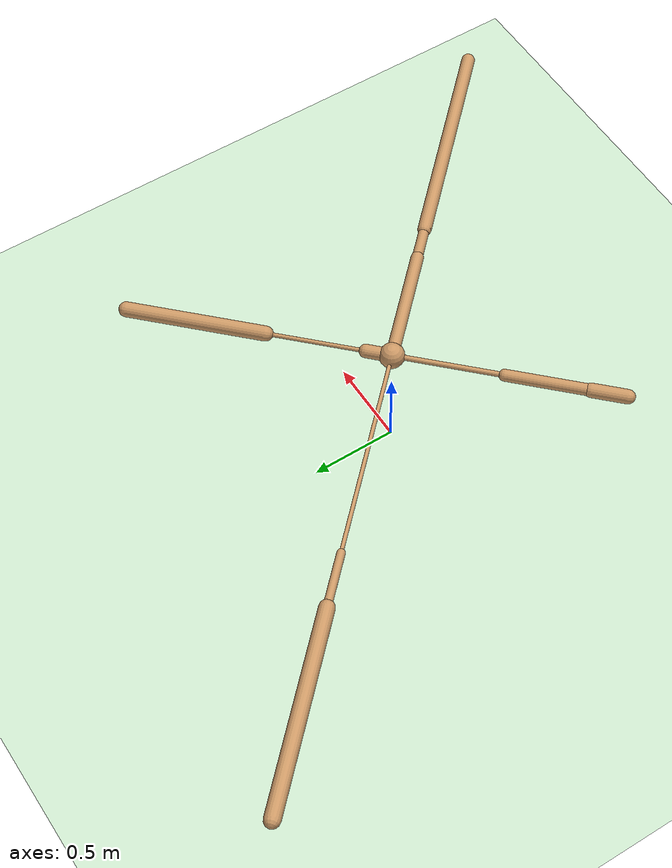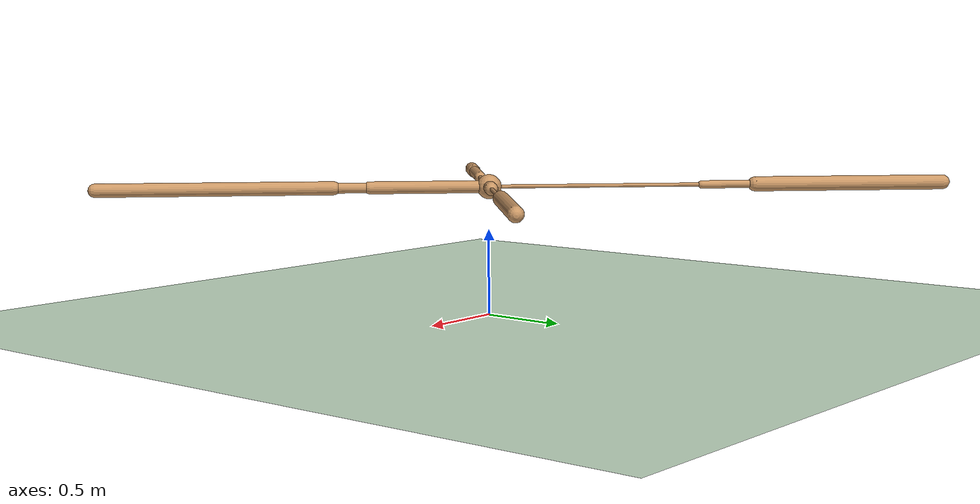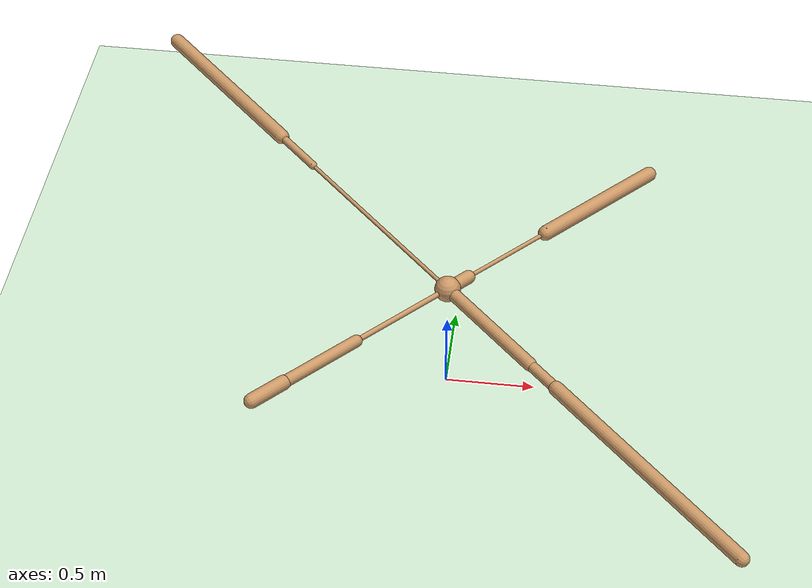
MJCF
<mujoco model="ant">
  <compiler angle="degree" coordinate="local" inertiafromgeom="true" />
  <option integrator="RK4" timestep="0.01" />
  <custom>
    <numeric data="0.0 0.0 0.55 1.0 0.0 0.0 0.0 0.0 1.0 0.0 -1.0 0.0 -1.0 0.0 1.0" name="init_qpos" />
  </custom>
  <default>
    <joint armature="1" damping="1" limited="true" />
    <geom conaffinity="0" condim="3" density="5.0" friction="1 0.5 0.5" margin="0.01" rgba="0.8 0.6 0.4 1" />
  </default>
  <asset>
    <texture builtin="gradient" height="100" rgb1="1 1 1" rgb2="0 0 0" type="skybox" width="100" />
    <texture builtin="flat" height="1278" mark="cross" markrgb="1 1 1" name="texgeom" random="0.01" rgb1="0.8 0.6 0.4" rgb2="0.8 0.6 0.4" type="cube" width="127" />
    <texture builtin="checker" height="100" name="texplane" rgb1="0 0 0" rgb2="0.8 0.8 0.8" type="2d" width="100" />
    <material name="MatPlane" reflectance="0.5" shininess="1" specular="1" texrepeat="60 60" texture="texplane" />
    <material name="geom" texture="texgeom" texuniform="true" />
  </asset>
  <worldbody>
    <light cutoff="100" diffuse="1 1 1" dir="-0 0 -1.3" directional="true" exponent="1" pos="0 0 1.3" specular=".1 .1 .1" />
    <geom conaffinity="1" condim="3" material="MatPlane" name="floor" pos="0 0 0" rgba="0.8 0.9 0.8 1" size="40 40 40" type="plane" />
    <body name="torso" pos="0 0 0.75">
      <camera name="track" mode="trackcom" pos="0 -11 5" xyaxes="1 0 0 0 0.5 1" />
      <geom name="torso_geom" pos="0 0 0" size="0.07152463495731354" type="sphere" />
      <joint armature="0" damping="0" limited="false" margin="0.01" name="root" pos="0 0 0" type="free" />
      <body name="front_left_leg" pos="0 0 0">
        <geom fromto="0 0 0 0.10183091461658478 0.10183091461658478 0" name="aux_1_geom" size="0.03813844546675682" type="capsule" />
        <body name="aux_1" pos="0.10183091461658478 0.10183091461658478 0">
          <joint axis="0 0 1" name="hip_1" pos="0.0 0.0 0.0" range="-30 30" type="hinge" />
          <geom fromto="0 0 0 0.39294493198394775 0.39294493198394775 0" name="left_leg_geom" size="0.011669793166220188" type="capsule" />
          <body name="left_leg_geom_aux" pos="0.39294493198394775 0.39294493198394775 0">
            <joint axis="-1 1 0" name="ankle_1" pos="0.0 0.0 0.0" range="30 70" type="hinge" />
            <geom fromto="0 0 0 0.5542117357254028 0.5542117357254028 0" name="left_ankle_geom" size="0.042747125029563904" type="capsule" />
          </body>
        </body>
      </body>
      <body name="front_right_leg" pos="0 0 0">
        <geom fromto="0 0 0 -0.8852077722549438 0.8852077722549438 0" name="aux_2_geom" size="0.010945048183202744" type="capsule" />
        <body name="aux_2" pos="-0.8852077722549438 0.8852077722549438 0">
          <joint axis="0 0 1" name="hip_2" pos="0.0 0.0 0.0" range="-30 30" type="hinge" />
          <geom fromto="0 0 0 -0.22598549723625183 0.22598549723625183 0" name="right_leg_geom" size="0.02289547771215439" type="capsule" />
          <body name="right_leg_geom_aux" pos="-0.22598549723625183 0.22598549723625183 0">
            <joint axis="1 1 0" name="ankle_2" pos="0.0 0.0 0.0" range="-70 -30" type="hinge" />
            <geom fromto="0 0 0 -0.8062538504600525 0.8062538504600525 0" name="right_ankle_geom" size="0.04325727000832558" type="capsule" />
          </body>
        </body>
      </body>
      <body name="back_leg" pos="0 0 0">
        <geom fromto="0 0 0 -0.4354093074798584 -0.4354093074798584 0" name="aux_3_geom" size="0.015018107369542122" type="capsule" />
        <body name="aux_3" pos="-0.4354093074798584 -0.4354093074798584 0">
          <joint axis="0 0 1" name="hip_3" pos="0.0 0.0 0.0" range="-30 30" type="hinge" />
          <geom fromto="0 0 0 -0.32920968532562256 -0.32920968532562256 0" name="back_leg_geom" size="0.033492960035800934" type="capsule" />
          <body name="back_leg_geom_aux" pos="-0.32920968532562256 -0.32920968532562256 0">
            <joint axis="-1 1 0" name="ankle_3" pos="0.0 0.0 0.0" range="-70 -30" type="hinge" />
            <geom fromto="0 0 0 -0.14092499017715454 -0.14092499017715454 0" name="third_ankle_geom" size="0.0403166301548481" type="capsule" />
          </body>
        </body>
      </body>
      <body name="right_back_leg" pos="0 0 0">
        <geom fromto="0 0 0 0.48648208379745483 -0.48648208379745483 0" name="aux_4_geom" size="0.03594135493040085" type="capsule" />
        <body name="aux_4" pos="0.48648208379745483 -0.48648208379745483 0">
          <joint axis="0 0 1" name="hip_4" pos="0.0 0.0 0.0" range="-30 30" type="hinge" />
          <geom fromto="0 0 0 0.14447252452373505 -0.14447252452373505 0" name="rightback_leg_geom" size="0.029549362137913704" type="capsule" />
          <body name="rightback_leg_geom_aux" pos="0.14447252452373505 -0.14447252452373505 0">
            <joint axis="1 1 0" name="ankle_4" pos="0.0 0.0 0.0" range="30 70" type="hinge" />
            <geom fromto="0 0 0 0.9448431134223938 -0.9448431134223938 0" name="fourth_ankle_geom" size="0.03920643776655197" type="capsule" />
          </body>
        </body>
      </body>
    </body>
  </worldbody>
  <actuator>
    <motor ctrllimited="true" ctrlrange="-1.0 1.0" joint="hip_4" gear="150" />
    <motor ctrllimited="true" ctrlrange="-1.0 1.0" joint="ankle_4" gear="150" />
    <motor ctrllimited="true" ctrlrange="-1.0 1.0" joint="hip_1" gear="150" />
    <motor ctrllimited="true" ctrlrange="-1.0 1.0" joint="ankle_1" gear="150" />
    <motor ctrllimited="true" ctrlrange="-1.0 1.0" joint="hip_2" gear="150" />
    <motor ctrllimited="true" ctrlrange="-1.0 1.0" joint="ankle_2" gear="150" />
    <motor ctrllimited="true" ctrlrange="-1.0 1.0" joint="hip_3" gear="150" />
    <motor ctrllimited="true" ctrlrange="-1.0 1.0" joint="ankle_3" gear="150" />
  </actuator>
</mujoco>
